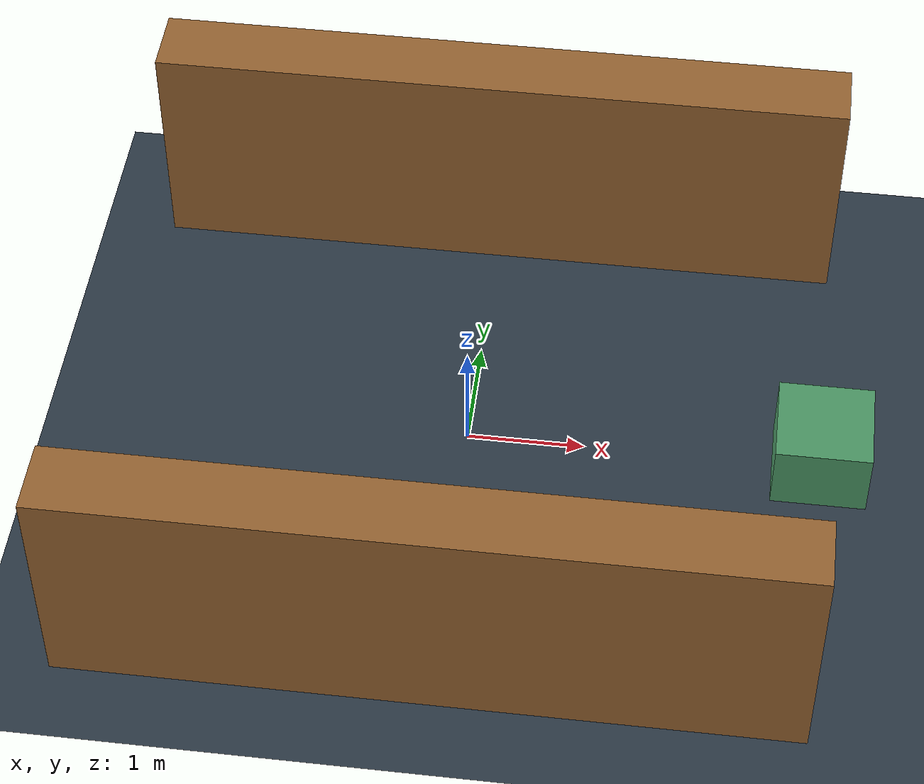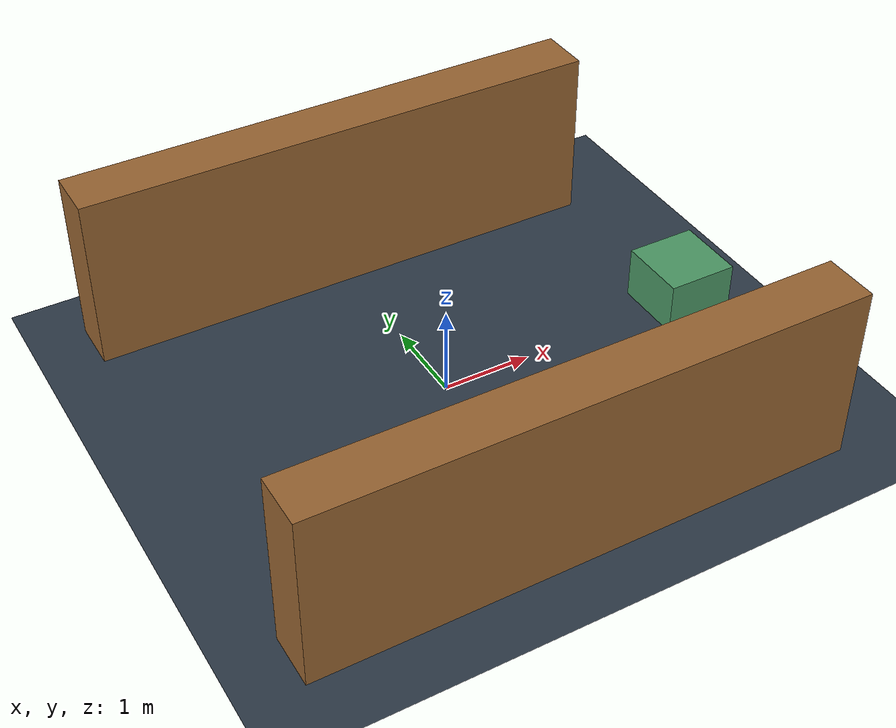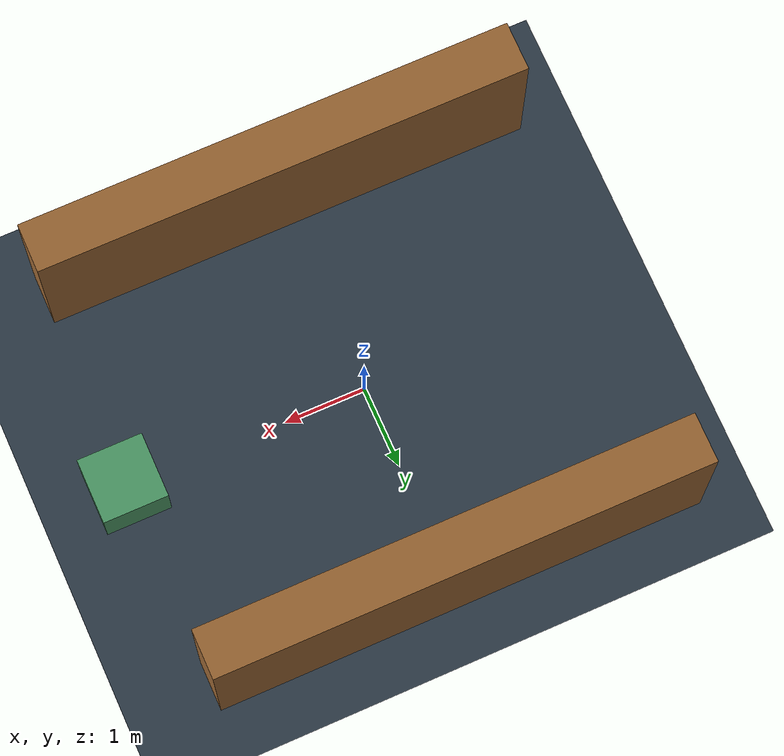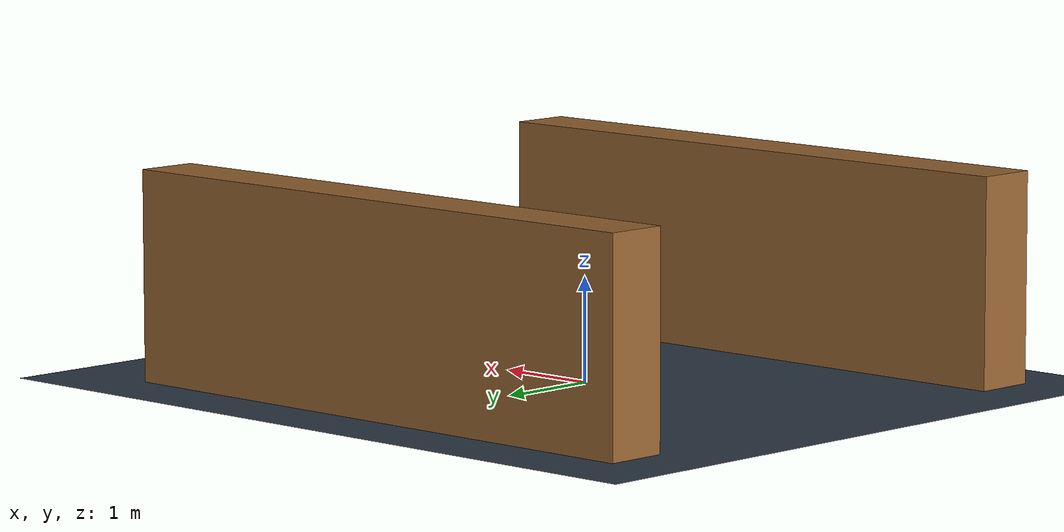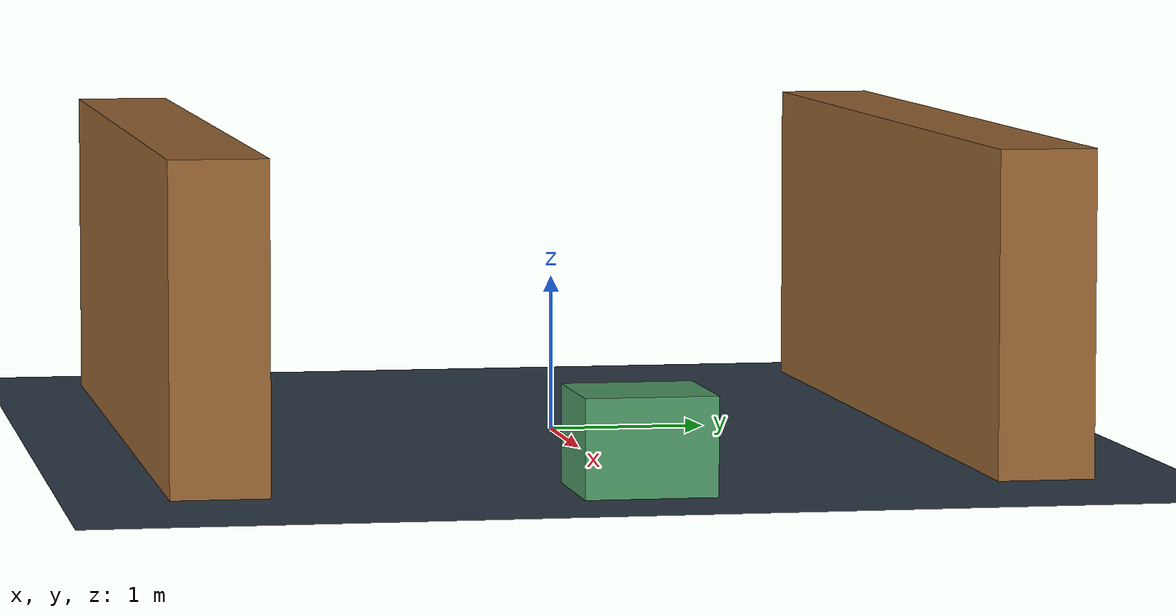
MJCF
<mujoco model="warehouse">
  <include file="empty.xml"/>
  <worldbody>
    <geom name="shelf_left" type="box" pos="0 2.5 1" size="3 0.3 1" rgba="0.6 0.4 0.2 1"/>
    <geom name="shelf_right" type="box" pos="0 -2.5 1" size="3 0.3 1" rgba="0.6 0.4 0.2 1"/>
    <geom name="crate" type="box" pos="3 0 0.3" size="0.4 0.4 0.3" rgba="0.3 0.6 0.4 1"/>
  </worldbody>
</mujoco>

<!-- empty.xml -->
<mujoco model="empty">
  <option timestep="0.002" gravity="0 0 -9.81"/>
  <visual><global offwidth="960" offheight="640"/></visual>
  <worldbody>
    <light pos="0 0 6" dir="0 0 -1"/>
    <geom name="floor" type="plane" size="10 10 0.1" rgba="0.18 0.23 0.28 1"/>
  </worldbody>
</mujoco>
